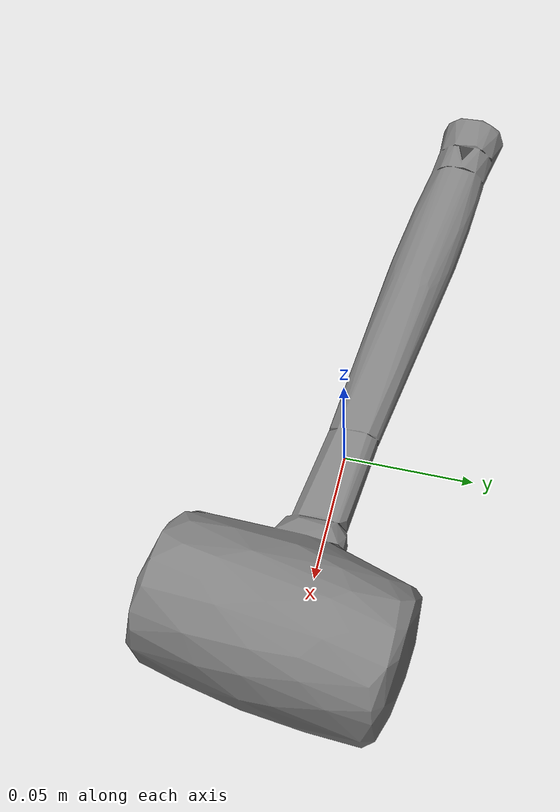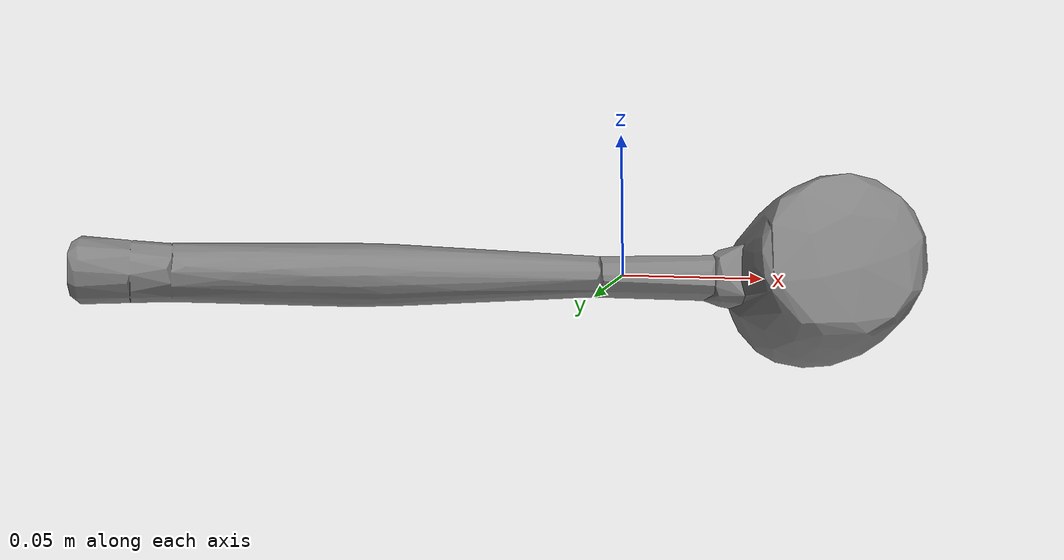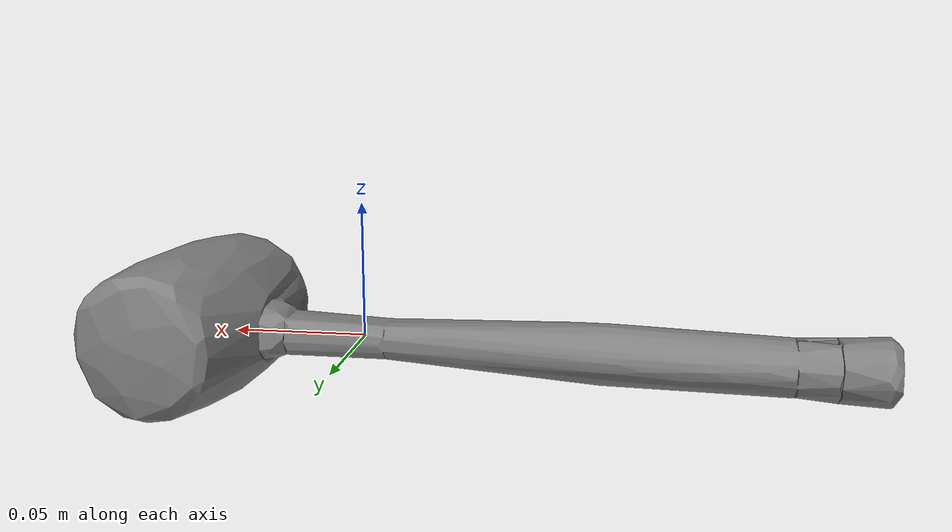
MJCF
<mujoco model="hammer_Cole_Hardware_Hammer_Black_M">
  <default>
    <default class="visual">
      <geom group="2" type="mesh" contype="0" conaffinity="0" />
    </default>
    <default class="collision">
      <geom group="3" type="mesh" />
    </default>
  </default>
  <asset>
    <mesh file="hammer_Cole_Hardware_Hammer_Black_M.stl" />
    <mesh file="hammer_Cole_Hardware_Hammer_Black_M_collision_0.stl" />
    <mesh file="hammer_Cole_Hardware_Hammer_Black_M_collision_1.stl" />
    <mesh file="hammer_Cole_Hardware_Hammer_Black_M_collision_2.stl" />
    <mesh file="hammer_Cole_Hardware_Hammer_Black_M_collision_3.stl" />
    <mesh file="hammer_Cole_Hardware_Hammer_Black_M_collision_4.stl" />
    <mesh file="hammer_Cole_Hardware_Hammer_Black_M_collision_5.stl" />
    <mesh file="hammer_Cole_Hardware_Hammer_Black_M_collision_6.stl" />
    <mesh file="hammer_Cole_Hardware_Hammer_Black_M_collision_7.stl" />
    <mesh file="hammer_Cole_Hardware_Hammer_Black_M_collision_8.stl" />
    <mesh file="hammer_Cole_Hardware_Hammer_Black_M_collision_9.stl" />
    <mesh file="hammer_Cole_Hardware_Hammer_Black_M_collision_10.stl" />
    <mesh file="hammer_Cole_Hardware_Hammer_Black_M_collision_11.stl" />
    <mesh file="hammer_Cole_Hardware_Hammer_Black_M_collision_12.stl" />
    <mesh file="hammer_Cole_Hardware_Hammer_Black_M_collision_13.stl" />
    <mesh file="hammer_Cole_Hardware_Hammer_Black_M_collision_14.stl" />
    <mesh file="hammer_Cole_Hardware_Hammer_Black_M_collision_15.stl" />
  </asset>
  <worldbody>
    <body name="hammer_Cole_Hardware_Hammer_Black_M">
      <geom mesh="hammer_Cole_Hardware_Hammer_Black_M" class="visual" />
      <geom mesh="hammer_Cole_Hardware_Hammer_Black_M_collision_0" class="collision" />
      <geom mesh="hammer_Cole_Hardware_Hammer_Black_M_collision_1" class="collision" />
      <geom mesh="hammer_Cole_Hardware_Hammer_Black_M_collision_2" class="collision" />
      <geom mesh="hammer_Cole_Hardware_Hammer_Black_M_collision_3" class="collision" />
      <geom mesh="hammer_Cole_Hardware_Hammer_Black_M_collision_4" class="collision" />
      <geom mesh="hammer_Cole_Hardware_Hammer_Black_M_collision_5" class="collision" />
      <geom mesh="hammer_Cole_Hardware_Hammer_Black_M_collision_6" class="collision" />
      <geom mesh="hammer_Cole_Hardware_Hammer_Black_M_collision_7" class="collision" />
      <geom mesh="hammer_Cole_Hardware_Hammer_Black_M_collision_8" class="collision" />
      <geom mesh="hammer_Cole_Hardware_Hammer_Black_M_collision_9" class="collision" />
      <geom mesh="hammer_Cole_Hardware_Hammer_Black_M_collision_10" class="collision" />
      <geom mesh="hammer_Cole_Hardware_Hammer_Black_M_collision_11" class="collision" />
      <geom mesh="hammer_Cole_Hardware_Hammer_Black_M_collision_12" class="collision" />
      <geom mesh="hammer_Cole_Hardware_Hammer_Black_M_collision_13" class="collision" />
      <geom mesh="hammer_Cole_Hardware_Hammer_Black_M_collision_14" class="collision" />
      <geom mesh="hammer_Cole_Hardware_Hammer_Black_M_collision_15" class="collision" />
    </body>
  </worldbody>
</mujoco>
